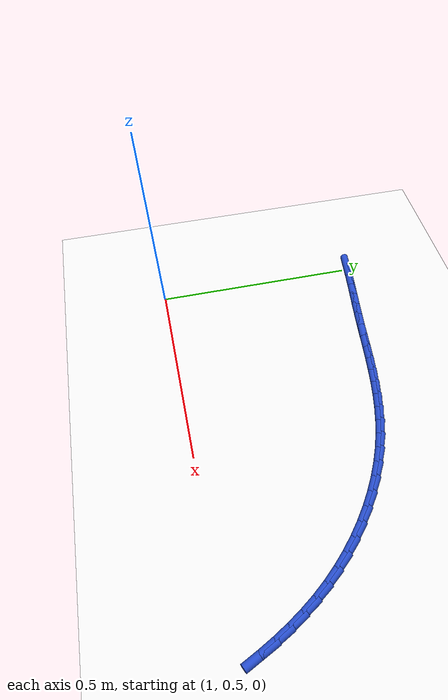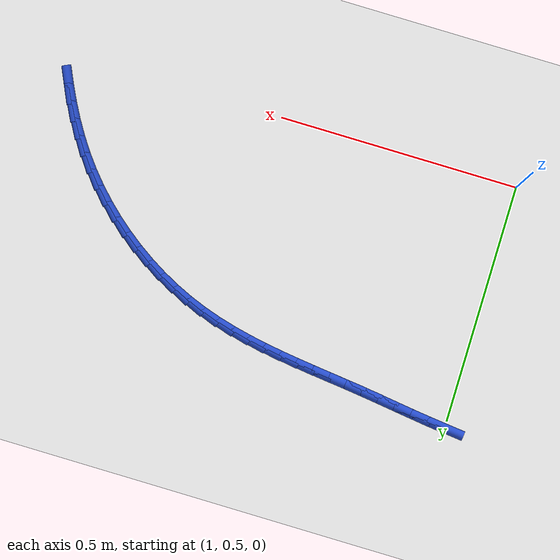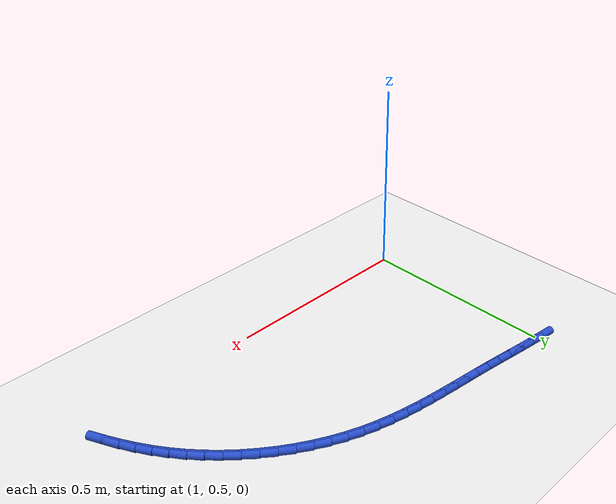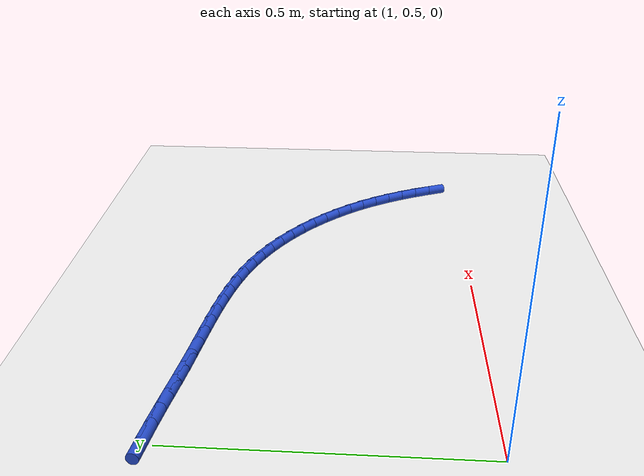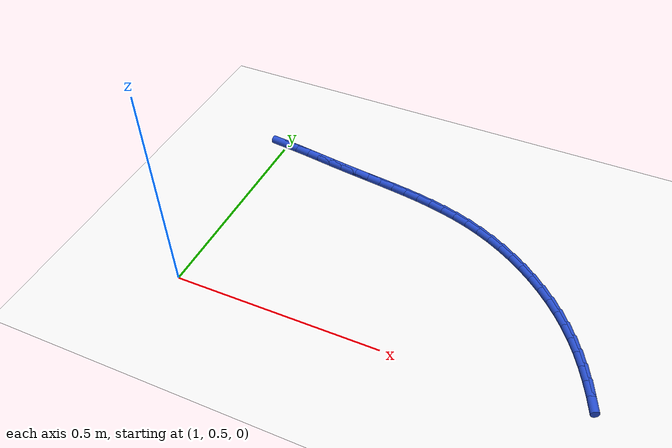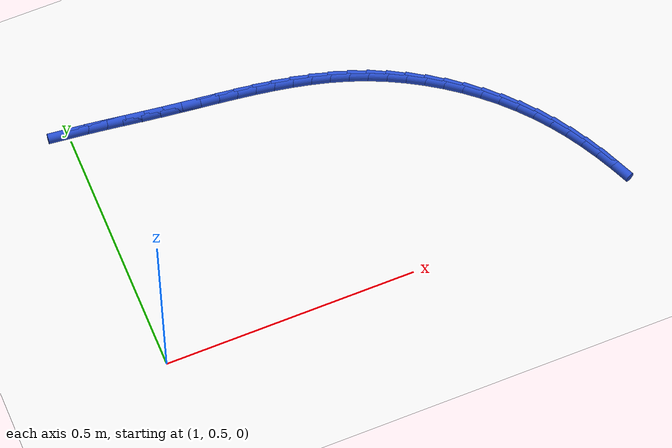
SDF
<sdf version="1.6">
 <world name="default">
  <model name="ground_plane">
   <static>1</static>
   <link name="link">
    <collision name="collision">
     <geometry><plane><normal>0 0 1</normal><size>100 100</size></plane></geometry>
     <surface><friction><ode><mu>100</mu><mu2>50</mu2></ode></friction></surface>
    </collision>
    <visual name="visual">
     <cast_shadows>0</cast_shadows>
     <geometry><plane><normal>0 0 1</normal><size>100 100</size></plane></geometry>
     <material>
      <script><uri>file://media/materials/scripts/gazebo.material</uri><name>Gazebo/WhiteGlow</name></script>
     </material>
    </visual>
   </link>
  </model>
  <model name="line">
   <link name="link_44">
    <pose>0.9991225024860165 1.0131458286501067 0.01 0 1.57 -0.11218427442498657</pose>
    <collision name="collision">
     <geometry><cylinder><radius>0.01</radius><length>0.08</length></cylinder></geometry>
    </collision>
    <visual name="visual">
     <material>
      <script><name>Gazebo/Blue</name><uri>file://media/materials/scripts/gazebo.material</uri></script>
     </material>
     <geometry><cylinder><radius>0.01</radius><length>0.08</length></cylinder></geometry>
    </visual>
   </link>
   <link name="link_45">
    <pose>1.0354337815816534 1.0090550986987714 0.01 0 1.57 -0.1267410793708616</pose>
    <collision name="collision">
     <geometry><cylinder><radius>0.01</radius><length>0.08</length></cylinder></geometry>
    </collision>
    <visual name="visual">
     <material>
      <script><name>Gazebo/Blue</name><uri>file://media/materials/scripts/gazebo.material</uri></script>
     </material>
     <geometry><cylinder><radius>0.01</radius><length>0.08</length></cylinder></geometry>
    </visual>
   </link>
   <link name="link_46">
    <pose>1.071674382798363 1.0044371728860426 0.01 0 1.57 -0.13513619637270025</pose>
    <collision name="collision">
     <geometry><cylinder><radius>0.01</radius><length>0.08</length></cylinder></geometry>
    </collision>
    <visual name="visual">
     <material>
      <script><name>Gazebo/Blue</name><uri>file://media/materials/scripts/gazebo.material</uri></script>
     </material>
     <geometry><cylinder><radius>0.01</radius><length>0.08</length></cylinder></geometry>
    </visual>
   </link>
   <link name="link_47">
    <pose>1.1078940263886827 0.9995125741256525 0.01 0 1.57 -0.1373631088422806</pose>
    <collision name="collision">
     <geometry><cylinder><radius>0.01</radius><length>0.08</length></cylinder></geometry>
    </collision>
    <visual name="visual">
     <material>
      <script><name>Gazebo/Blue</name><uri>file://media/materials/scripts/gazebo.material</uri></script>
     </material>
     <geometry><cylinder><radius>0.01</radius><length>0.08</length></cylinder></geometry>
    </visual>
   </link>
   <link name="link_48">
    <pose>1.14414243260515 0.9945018253313338 0.01 0 1.57 -0.13343831675446832</pose>
    <collision name="collision">
     <geometry><cylinder><radius>0.01</radius><length>0.08</length></cylinder></geometry>
    </collision>
    <visual name="visual">
     <material>
      <script><name>Gazebo/Blue</name><uri>file://media/materials/scripts/gazebo.material</uri></script>
     </material>
     <geometry><cylinder><radius>0.01</radius><length>0.08</length></cylinder></geometry>
    </visual>
   </link>
   <link name="link_49">
    <pose>1.1804693217003033 0.9896254494168188 0.01 0 1.57 -0.1241115976965939</pose>
    <collision name="collision">
     <geometry><cylinder><radius>0.01</radius><length>0.08</length></cylinder></geometry>
    </collision>
    <visual name="visual">
     <material>
      <script><name>Gazebo/Blue</name><uri>file://media/materials/scripts/gazebo.material</uri></script>
     </material>
     <geometry><cylinder><radius>0.01</radius><length>0.08</length></cylinder></geometry>
    </visual>
   </link>
   <link name="link_50">
    <pose>1.2169179076732959 0.9850783859840062 0.01 0 1.57 -0.11703241086616221</pose>
    <collision name="collision">
     <geometry><cylinder><radius>0.01</radius><length>0.08</length></cylinder></geometry>
    </collision>
    <visual name="visual">
     <material>
      <script><name>Gazebo/Blue</name><uri>file://media/materials/scripts/gazebo.material</uri></script>
     </material>
     <geometry><cylinder><radius>0.01</radius><length>0.08</length></cylinder></geometry>
    </visual>
   </link>
   <link name="link_51">
    <pose>1.2534618125292718 0.9807819311753098 0.01 0 1.57 -0.11678503627030312</pose>
    <collision name="collision">
     <geometry><cylinder><radius>0.01</radius><length>0.08</length></cylinder></geometry>
    </collision>
    <visual name="visual">
     <material>
      <script><name>Gazebo/Blue</name><uri>file://media/materials/scripts/gazebo.material</uri></script>
     </material>
     <geometry><cylinder><radius>0.01</radius><length>0.08</length></cylinder></geometry>
    </visual>
   </link>
   <link name="link_52">
    <pose>1.2900324725567665 0.9764915022041387 0.01 0 1.57 -0.12341890405643915</pose>
    <collision name="collision">
     <geometry><cylinder><radius>0.01</radius><length>0.08</length></cylinder></geometry>
    </collision>
    <visual name="visual">
     <material>
      <script><name>Gazebo/Blue</name><uri>file://media/materials/scripts/gazebo.material</uri></script>
     </material>
     <geometry><cylinder><radius>0.01</radius><length>0.08</length></cylinder></geometry>
    </visual>
   </link>
   <link name="link_53">
    <pose>1.3265607333447897 0.971960193587693 0.01 0 1.57 -0.13696106924578758</pose>
    <collision name="collision">
     <geometry><cylinder><radius>0.01</radius><length>0.08</length></cylinder></geometry>
    </collision>
    <visual name="visual">
     <material>
      <script><name>Gazebo/Blue</name><uri>file://media/materials/scripts/gazebo.material</uri></script>
     </material>
     <geometry><cylinder><radius>0.01</radius><length>0.08</length></cylinder></geometry>
    </visual>
   </link>
   <link name="link_54">
    <pose>1.3629774404823563 0.9669410998431742 0.01 0 1.57 -0.15747174510346842</pose>
    <collision name="collision">
     <geometry><cylinder><radius>0.01</radius><length>0.08</length></cylinder></geometry>
    </collision>
    <visual name="visual">
     <material>
      <script><name>Gazebo/Blue</name><uri>file://media/materials/scripts/gazebo.material</uri></script>
     </material>
     <geometry><cylinder><radius>0.01</radius><length>0.08</length></cylinder></geometry>
    </visual>
   </link>
   <link name="link_55">
    <pose>1.3992134395584779 0.961187315487783 0.01 0 1.57 -0.1850252525510422</pose>
    <collision name="collision">
     <geometry><cylinder><radius>0.01</radius><length>0.08</length></cylinder></geometry>
    </collision>
    <visual name="visual">
     <material>
      <script><name>Gazebo/Blue</name><uri>file://media/materials/scripts/gazebo.material</uri></script>
     </material>
     <geometry><cylinder><radius>0.01</radius><length>0.08</length></cylinder></geometry>
    </visual>
   </link>
   <link name="link_56">
    <pose>1.435199576162166 0.9544519350387198 0.01 0 1.57 -0.21968012567694756</pose>
    <collision name="collision">
     <geometry><cylinder><radius>0.01</radius><length>0.08</length></cylinder></geometry>
    </collision>
    <visual name="visual">
     <material>
      <script><name>Gazebo/Blue</name><uri>file://media/materials/scripts/gazebo.material</uri></script>
     </material>
     <geometry><cylinder><radius>0.01</radius><length>0.08</length></cylinder></geometry>
    </visual>
   </link>
   <link name="link_57">
    <pose>1.4708666958824341 0.9464880530131861 0.01 0 1.57 -0.26143764998200736</pose>
    <collision name="collision">
     <geometry><cylinder><radius>0.01</radius><length>0.08</length></cylinder></geometry>
    </collision>
    <visual name="visual">
     <material>
      <script><name>Gazebo/Blue</name><uri>file://media/materials/scripts/gazebo.material</uri></script>
     </material>
     <geometry><cylinder><radius>0.01</radius><length>0.08</length></cylinder></geometry>
    </visual>
   </link>
   <link name="link_58">
    <pose>1.5061456443082946 0.937048763928382 0.01 0 1.57 -0.3101895486557157</pose>
    <collision name="collision">
     <geometry><cylinder><radius>0.01</radius><length>0.08</length></cylinder></geometry>
    </collision>
    <visual name="visual">
     <material>
      <script><name>Gazebo/Blue</name><uri>file://media/materials/scripts/gazebo.material</uri></script>
     </material>
     <geometry><cylinder><radius>0.01</radius><length>0.08</length></cylinder></geometry>
    </visual>
   </link>
   <link name="link_59">
    <pose>1.5409672670287589 0.9258871623015088 0.01 0 1.57 -0.3653326151483972</pose>
    <collision name="collision">
     <geometry><cylinder><radius>0.01</radius><length>0.08</length></cylinder></geometry>
    </collision>
    <visual name="visual">
     <material>
      <script><name>Gazebo/Blue</name><uri>file://media/materials/scripts/gazebo.material</uri></script>
     </material>
     <geometry><cylinder><radius>0.01</radius><length>0.08</length></cylinder></geometry>
    </visual>
   </link>
   <link name="link_60">
    <pose>1.5752601894281915 0.9127700066724777 0.01 0 1.57 -0.42214149033342035</pose>
    <collision name="collision">
     <geometry><cylinder><radius>0.01</radius><length>0.08</length></cylinder></geometry>
    </collision>
    <visual name="visual">
     <material>
      <script><name>Gazebo/Blue</name><uri>file://media/materials/scripts/gazebo.material</uri></script>
     </material>
     <geometry><cylinder><radius>0.01</radius><length>0.08</length></cylinder></geometry>
    </visual>
   </link>
   <link name="link_61">
    <pose>1.6089227095334984 0.8976507022045873 0.01 0 1.57 -0.4776172571557755</pose>
    <collision name="collision">
     <geometry><cylinder><radius>0.01</radius><length>0.08</length></cylinder></geometry>
    </collision>
    <visual name="visual">
     <material>
      <script><name>Gazebo/Blue</name><uri>file://media/materials/scripts/gazebo.material</uri></script>
     </material>
     <geometry><cylinder><radius>0.01</radius><length>0.08</length></cylinder></geometry>
    </visual>
   </link>
   <link name="link_62">
    <pose>1.6418311759731725 0.880617739391444 0.01 0 1.57 -0.5320436662417818</pose>
    <collision name="collision">
     <geometry><cylinder><radius>0.01</radius><length>0.08</length></cylinder></geometry>
    </collision>
    <visual name="visual">
     <material>
      <script><name>Gazebo/Blue</name><uri>file://media/materials/scripts/gazebo.material</uri></script>
     </material>
     <geometry><cylinder><radius>0.01</radius><length>0.08</length></cylinder></geometry>
    </visual>
   </link>
   <link name="link_63">
    <pose>1.6738614478613179 0.8617626213929599 0.01 0 1.57 -0.5857787641336437</pose>
    <collision name="collision">
     <geometry><cylinder><radius>0.01</radius><length>0.08</length></cylinder></geometry>
    </collision>
    <visual name="visual">
     <material>
      <script><name>Gazebo/Blue</name><uri>file://media/materials/scripts/gazebo.material</uri></script>
     </material>
     <geometry><cylinder><radius>0.01</radius><length>0.08</length></cylinder></geometry>
    </visual>
   </link>
   <link name="link_64">
    <pose>1.7048893843120374 0.8411768513690479 0.01 0 1.57 -0.6391812825142309</pose>
    <collision name="collision">
     <geometry><cylinder><radius>0.01</radius><length>0.08</length></cylinder></geometry>
    </collision>
    <visual name="visual">
     <material>
      <script><name>Gazebo/Blue</name><uri>file://media/materials/scripts/gazebo.material</uri></script>
     </material>
     <geometry><cylinder><radius>0.01</radius><length>0.08</length></cylinder></geometry>
    </visual>
   </link>
   <link name="link_65">
    <pose>1.7347908444394344 0.8189519324796196 0.01 0 1.57 -0.6926100284502452</pose>
    <collision name="collision">
     <geometry><cylinder><radius>0.01</radius><length>0.08</length></cylinder></geometry>
    </collision>
    <visual name="visual">
     <material>
      <script><name>Gazebo/Blue</name><uri>file://media/materials/scripts/gazebo.material</uri></script>
     </material>
     <geometry><cylinder><radius>0.01</radius><length>0.08</length></cylinder></geometry>
    </visual>
   </link>
   <link name="link_66">
    <pose>1.7634416873576124 0.7951793678845873 0.01 0 1.57 -0.7464237984970812</pose>
    <collision name="collision">
     <geometry><cylinder><radius>0.01</radius><length>0.08</length></cylinder></geometry>
    </collision>
    <visual name="visual">
     <material>
      <script><name>Gazebo/Blue</name><uri>file://media/materials/scripts/gazebo.material</uri></script>
     </material>
     <geometry><cylinder><radius>0.01</radius><length>0.08</length></cylinder></geometry>
    </visual>
   </link>
   <link name="link_67">
    <pose>1.7907177721806746 0.769950660743864 0.01 0 1.57 -0.8009812515004475</pose>
    <collision name="collision">
     <geometry><cylinder><radius>0.01</radius><length>0.08</length></cylinder></geometry>
    </collision>
    <visual name="visual">
     <material>
      <script><name>Gazebo/Blue</name><uri>file://media/materials/scripts/gazebo.material</uri></script>
     </material>
     <geometry><cylinder><radius>0.01</radius><length>0.08</length></cylinder></geometry>
    </visual>
   </link>
   <link name="link_68">
    <pose>1.8164949580227243 0.7433573142173615 0.01 0 1.57 -0.8566401722104824</pose>
    <collision name="collision">
     <geometry><cylinder><radius>0.01</radius><length>0.08</length></cylinder></geometry>
    </collision>
    <visual name="visual">
     <material>
      <script><name>Gazebo/Blue</name><uri>file://media/materials/scripts/gazebo.material</uri></script>
     </material>
     <geometry><cylinder><radius>0.01</radius><length>0.08</length></cylinder></geometry>
    </visual>
   </link>
   <link name="link_69">
    <pose>1.8406491039978654 0.7154908314649919 0.01 0 1.57 -0.913693137524716</pose>
    <collision name="collision">
     <geometry><cylinder><radius>0.01</radius><length>0.08</length></cylinder></geometry>
    </collision>
    <visual name="visual">
     <material>
      <script><name>Gazebo/Blue</name><uri>file://media/materials/scripts/gazebo.material</uri></script>
     </material>
     <geometry><cylinder><radius>0.01</radius><length>0.08</length></cylinder></geometry>
    </visual>
   </link>
   <link name="link_70">
    <pose>1.8630588717643106 0.686442829546759 0.01 0 1.57 -0.9697912031403088</pose>
    <collision name="collision">
     <geometry><cylinder><radius>0.01</radius><length>0.08</length></cylinder></geometry>
    </collision>
    <visual name="visual">
     <material>
      <script><name>Gazebo/Blue</name><uri>file://media/materials/scripts/gazebo.material</uri></script>
     </material>
     <geometry><cylinder><radius>0.01</radius><length>0.08</length></cylinder></geometry>
    </visual>
   </link>
   <link name="link_71">
    <pose>1.883718599030442 0.65630962679127 0.01 0 1.57 -1.021239423830846</pose>
    <collision name="collision">
     <geometry><cylinder><radius>0.01</radius><length>0.08</length></cylinder></geometry>
    </collision>
    <visual name="visual">
     <material>
      <script><name>Gazebo/Blue</name><uri>file://media/materials/scripts/gazebo.material</uri></script>
     </material>
     <geometry><cylinder><radius>0.01</radius><length>0.08</length></cylinder></geometry>
    </visual>
   </link>
   <link name="link_72">
    <pose>1.9027769026811145 0.6251938116915063 0.01 0 1.57 -1.0675033149352238</pose>
    <collision name="collision">
     <geometry><cylinder><radius>0.01</radius><length>0.08</length></cylinder></geometry>
    </collision>
    <visual name="visual">
     <material>
      <script><name>Gazebo/Blue</name><uri>file://media/materials/scripts/gazebo.material</uri></script>
     </material>
     <geometry><cylinder><radius>0.01</radius><length>0.08</length></cylinder></geometry>
    </visual>
   </link>
   <link name="link_73">
    <pose>1.9203931240312633 0.5931984085992671 0.01 0 1.57 -1.108431195358011</pose>
    <collision name="collision">
     <geometry><cylinder><radius>0.01</radius><length>0.08</length></cylinder></geometry>
    </collision>
    <visual name="visual">
     <material>
      <script><name>Gazebo/Blue</name><uri>file://media/materials/scripts/gazebo.material</uri></script>
     </material>
     <geometry><cylinder><radius>0.01</radius><length>0.08</length></cylinder></geometry>
    </visual>
   </link>
   <link name="link_74">
    <pose>1.9367266043958222 0.5604264418663504 0.01 0 1.57 -1.143981070764763</pose>
    <collision name="collision">
     <geometry><cylinder><radius>0.01</radius><length>0.08</length></cylinder></geometry>
    </collision>
    <visual name="visual">
     <material>
      <script><name>Gazebo/Blue</name><uri>file://media/materials/scripts/gazebo.material</uri></script>
     </material>
     <geometry><cylinder><radius>0.01</radius><length>0.08</length></cylinder></geometry>
    </visual>
   </link>
  </model>
 </world>
</sdf>
